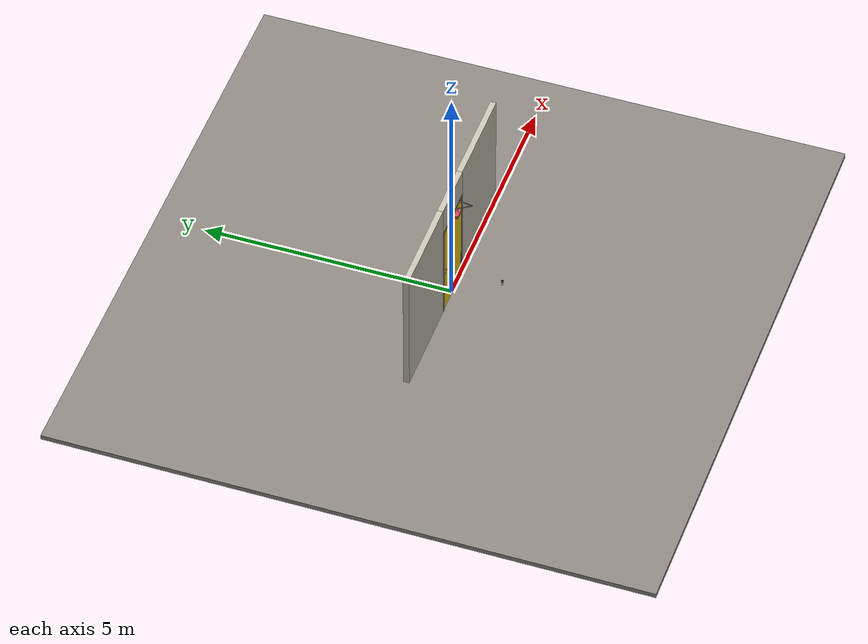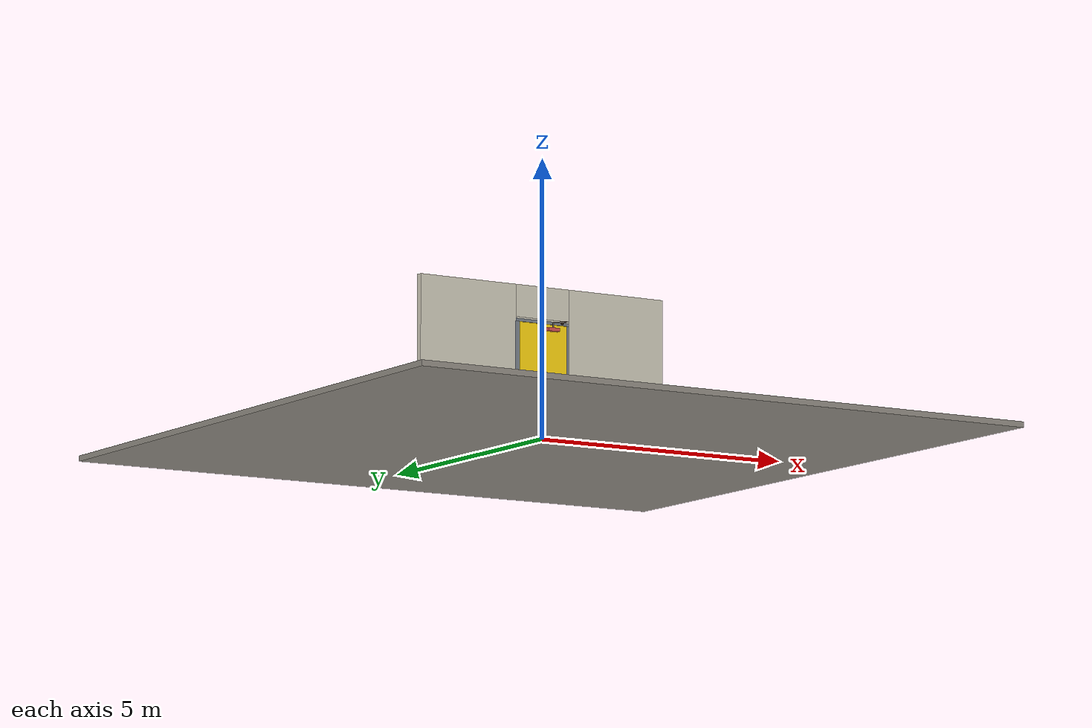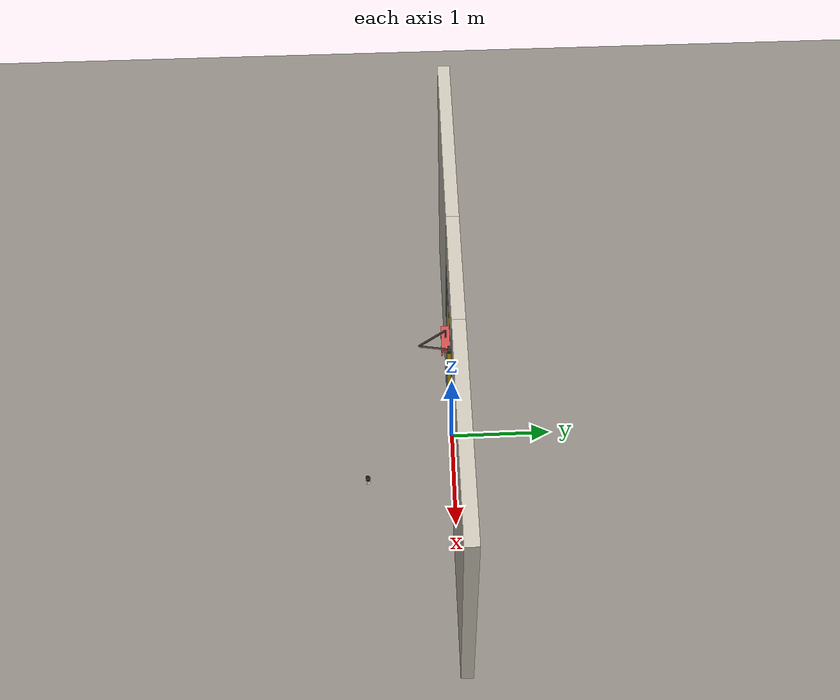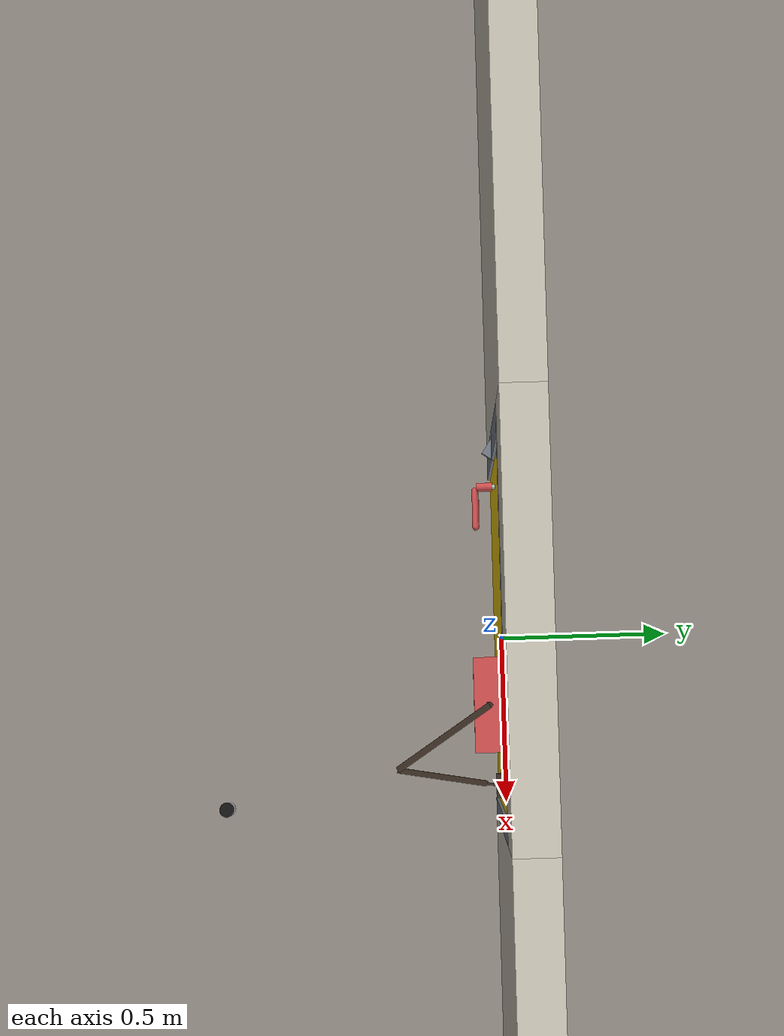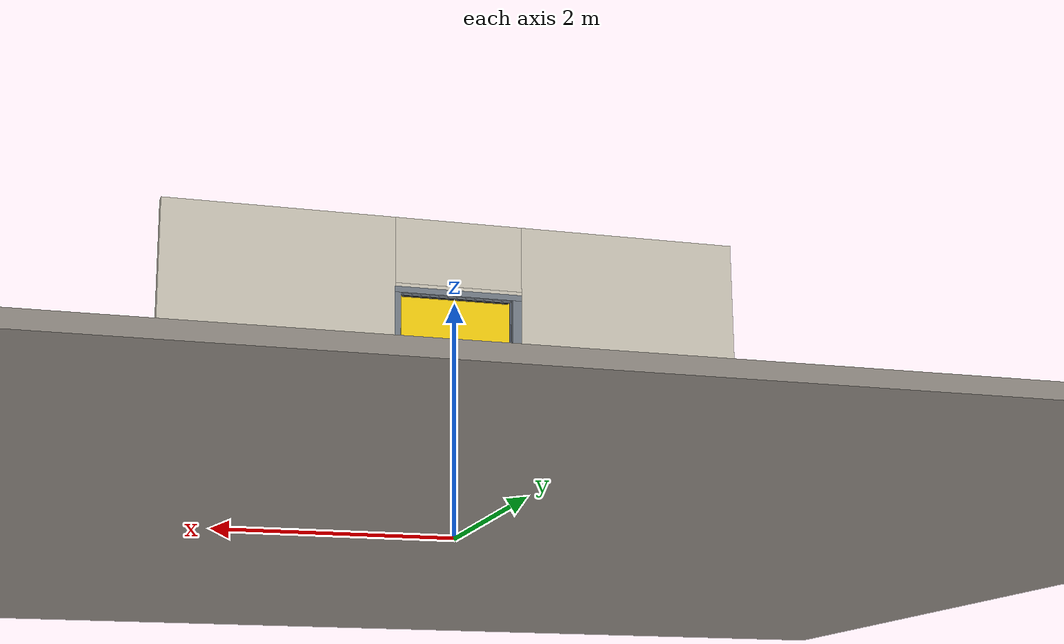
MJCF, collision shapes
<?xml version="1.0" ?>
<mujoco model="db0813_swing_single_full">
  <compiler angle="radian" meshdir="../../hardware" texturedir="../../textures" autolimits="true" inertiafromgeom="false"/>
  <option timestep="0.002" integrator="implicitfast" cone="elliptic" impratio="10" noslip_iterations="3">
    <flag multiccd="enable"/>
  </option>
  <size memory="16M"/>
  <default>
    <geom condim="4" solref="0.005 1" solimp="0.95 0.99 0.001"/>
    <joint solreflimit="0.005 1" solimplimit="0.95 0.99 0.001"/>
    <tendon solreflimit="0.005 1"/>
    <equality solref="0.002 1"/>
  </default>
  <visual>
    <headlight ambient="0.4 0.4 0.4" diffuse="0.7 0.7 0.7" specular="0.2 0.2 0.2"/>
    <quality shadowsize="4096"/>
    <map znear="0.01" zfar="60"/>
  </visual>
  <asset>
    <mesh name="closer_body_b226fdb10b" file="closer_body_b226fdb10b.obj"/>
    <mesh name="hinge_e22b26c0c1" file="hinge_e22b26c0c1.obj"/>
    <mesh name="hinge_jamb_e1d088f8dc" file="hinge_jamb_e1d088f8dc.obj"/>
    <mesh name="lever_6268dcb28c" file="lever_6268dcb28c.obj"/>
    <material name="mat_floor" rgba="0.55 0.53 0.5 1" specular="0.2" shininess="0.15" reflectance="0"/>
    <material name="mat_wall" rgba="0.78 0.76 0.7 1" specular="0.2" shininess="0.1" reflectance="0"/>
    <material name="mat_leaf" rgba="0.95 0.8 0.05 1" specular="0.23" shininess="0.56" reflectance="0.02"/>
    <material name="mat_hinge" rgba="0.65 0.66 0.68 1" specular="0.74" shininess="0.5" reflectance="0.36"/>
    <material name="mat_op_stainless" rgba="0.75 0.76 0.77 1" specular="0.8" shininess="0.65" reflectance="0.4"/>
    <material name="mat_trim" rgba="0.85 0.66 0.3 1" specular="0.8" shininess="0.75" reflectance="0.4"/>
    <material name="mat_bolt" rgba="0.85 0.66 0.3 1" specular="0.8" shininess="0.75" reflectance="0.4"/>
    <material name="mat_frame" rgba="0.45 0.48 0.52 1" specular="0.32" shininess="0.6" reflectance="0.08"/>
    <material name="mat_seal" rgba="0.1 0.1 0.1 1" specular="0.2" shininess="0.1" reflectance="0"/>
    <material name="mat_closer" rgba="0.22 0.17 0.13 1" specular="0.8" shininess="0.6" reflectance="0.4"/>
    <material name="mat_bumper_stop" rgba="0.08 0.08 0.08 1" specular="0.2" shininess="0.1" reflectance="0"/>
    <material name="mat_stop_base" rgba="0.9 0.9 0.92 1" specular="0.8" shininess="0.9" reflectance="0.4"/>
    <texture name="skybox" type="skybox" builtin="gradient" rgb1="0.6 0.7 0.85" rgb2="0.9 0.92 0.95" width="256" height="256"/>
  </asset>
  <worldbody>
    <light name="sun" pos="1.5 -2.5 4" dir="-0.3 0.5 -0.8" directional="true" diffuse="0.8 0.8 0.8" specular="0.3 0.3 0.3" castshadow="true"/>
    <light name="fill" pos="-1.5 2.5 3" dir="0.3 -0.5 -0.7" directional="true" diffuse="0.35 0.35 0.4" castshadow="false"/>
    <camera name="robot_view" pos="0 -2.513687 1.734312" xyaxes="1 0 0 0 0.26963 0.962964" fovy="52"/>
    <camera name="far_view" pos="0 2.570688 1.734312" xyaxes="-1 0 0 0 -0.26963 0.962964" fovy="52"/>
    <camera name="iso" pos="-1.932062 -2.106937 2.141063" xyaxes="0.741536 -0.670913 0 0.242917 0.268487 0.932151" fovy="46"/>
    <camera name="detail_handle" pos="-0.136 -0.877 1.296" xyaxes="0.97561 0.219512 0 -0.070934 0.315262 0.94635" fovy="38"/>
    <geom name="floor" type="box" size="6 6 0.05" pos="0 0 -0.05" material="mat_floor" group="0" contype="1" conaffinity="1" friction="0.8 0.005 0.0001" density="2400"/>
    <geom name="wall_left" type="box" size="0.967 0.0575 1.35" pos="-1.533 0.0285 1.35" material="mat_wall" group="0" contype="1" conaffinity="1" friction="0.6 0.005 0.0001" density="800"/>
    <geom name="wall_right" type="box" size="0.982 0.0575 1.35" pos="1.518 0.0285 1.35" material="mat_wall" group="0" contype="1" conaffinity="1" friction="0.6 0.005 0.0001" density="800"/>
    <geom name="wall_header" type="box" size="0.551 0.0575 0.2875" pos="-0.015 0.0285 2.4125" material="mat_wall" group="0" contype="1" conaffinity="1" friction="0.6 0.005 0.0001" density="800"/>
    <geom name="hinge_0_jamb" type="mesh" mesh="hinge_jamb_e1d088f8dc" pos="0.483 -0.029 0.259" quat="0 0 1 0" material="mat_hinge" group="1" contype="0" conaffinity="0" density="7850"/>
    <geom name="hinge_1_jamb" type="mesh" mesh="hinge_jamb_e1d088f8dc" pos="0.483 -0.029 1.025" quat="0 0 1 0" material="mat_hinge" group="1" contype="0" conaffinity="0" density="7850"/>
    <geom name="hinge_2_jamb" type="mesh" mesh="hinge_jamb_e1d088f8dc" pos="0.483 -0.029 1.861" quat="0 0 1 0" material="mat_hinge" group="1" contype="0" conaffinity="0" density="7850"/>
    <geom name="jamb_hinge" type="box" size="0.025 0.0575 1.0225" pos="0.511 0.0285 1.0225" material="mat_frame" group="0" contype="1" conaffinity="1" friction="0.6 0.005 0.0001" density="300"/>
    <geom name="strike_1016_wall_n" type="box" size="0.04 0.03825 0.0183" pos="-0.526 0.04775 1.016" material="mat_frame" group="0" contype="1" conaffinity="1" friction="0.6 0.005 0.0001" density="300"/>
    <geom name="strike_1016_wall_p" type="box" size="0.04 0.008 0.0183" pos="-0.526 -0.0175 1.016" material="mat_frame" group="0" contype="1" conaffinity="1" friction="0.6 0.005 0.0001" density="300"/>
    <geom name="strike_1016_ramp" type="box" size="0.04 0.018028 0.0183" pos="-0.529282 -0.018312 1.016" quat="0.957092 0 0 -0.289784" material="mat_frame" group="0" contype="1" conaffinity="1" friction="0.12 0.005 0.0001" density="300"/>
    <geom name="strike_1016_back" type="box" size="0.0285 0.0095 0.0183" pos="-0.5375 0 1.016" material="mat_frame" group="0" contype="1" conaffinity="1" friction="0.6 0.005 0.0001" density="300"/>
    <geom name="jamb_strike_0" type="box" size="0.04 0.0575 0.49885" pos="-0.526 0.0285 0.49885" material="mat_frame" group="0" contype="1" conaffinity="1" friction="0.6 0.005 0.0001" density="300"/>
    <geom name="jamb_strike_1" type="box" size="0.04 0.0575 0.50535" pos="-0.526 0.0285 1.53965" material="mat_frame" group="0" contype="1" conaffinity="1" friction="0.6 0.005 0.0001" density="300"/>
    <geom name="jamb_head" type="box" size="0.551 0.0575 0.025" pos="-0.015 0.0285 2.07" material="mat_frame" group="0" contype="1" conaffinity="1" friction="0.6 0.005 0.0001" density="300"/>
    <geom name="head_stud" type="box" size="0.551 0.0575 0.015" pos="-0.015 0.0285 2.11" material="mat_wall" group="0" contype="1" conaffinity="1" friction="0.6 0.005 0.0001" density="500"/>
    <geom name="stop_hinge" type="box" size="0.0055 0.016 1.0225" pos="0.4805 0.0385 1.0225" material="mat_frame" group="0" contype="1" conaffinity="1" friction="0.6 0.005 0.0001" density="300"/>
    <geom name="stop_strike" type="box" size="0.0055 0.016 1.0225" pos="-0.4805 0.0385 1.0225" material="mat_frame" group="0" contype="1" conaffinity="1" friction="0.6 0.005 0.0001" density="300"/>
    <geom name="stop_head" type="box" size="0.486 0.016 0.0055" pos="0 0.0385 2.0395" material="mat_frame" group="0" contype="1" conaffinity="1" friction="0.6 0.005 0.0001" density="300"/>
    <geom name="seal_hinge" type="box" size="0.004 0.0025 1.0225" pos="0.483 0.0245 1.0225" material="mat_seal" group="1" contype="0" conaffinity="0" density="1100"/>
    <geom name="seal_strike" type="box" size="0.004 0.0025 1.0225" pos="-0.483 0.0245 1.0225" material="mat_seal" group="1" contype="0" conaffinity="0" density="1100"/>
    <geom name="seal_head" type="box" size="0.466 0.0025 0.008" pos="0 0.0245 2.033" material="mat_seal" group="1" contype="0" conaffinity="0" density="1100"/>
    <geom name="closer_bracket" type="box" size="0.03 0.012 0.014" pos="0.386 -0.041 2.075" material="mat_closer" group="1" contype="0" conaffinity="0" density="2700"/>
    <geom name="door_stop_base" type="cylinder" size="0.022 0.003" pos="0.499 -0.84925 0.003" material="mat_stop_base" group="0" contype="1" conaffinity="1" friction="0.6 0.005 0.0001" density="7850"/>
    <geom name="door_stop_post" type="cylinder" size="0.012 0.0245" pos="0.499 -0.84925 0.0305" material="mat_stop_base" group="0" contype="1" conaffinity="1" friction="0.6 0.005 0.0001" density="7850"/>
    <geom name="door_stop_bumper" type="cylinder" size="0.022 0.02" pos="0.499 -0.84925 0.075" material="mat_bumper_stop" group="0" contype="1" conaffinity="1" friction="0.6 0.005 0.0001" density="1100"/>
    <site name="approach_point" pos="0 -1.5 0" quat="1 0 0 0" size="0.05" rgba="0.2 0.9 0.2 0.5" group="4"/>
    <site name="goal_point" pos="0 1.5 0" quat="1 0 0 0" size="0.05" rgba="0.2 0.9 0.2 0.5" group="4"/>
    <site name="door_plane_center" pos="0 0 1.0225" quat="1 0 0 0" size="0.02" rgba="0.2 0.9 0.2 0.5" group="4"/>
    <body name="leaf" pos="0.486 0 0">
      <inertial pos="-0.452876 -0.009112 1.158139" mass="51.355005" quat="0.515841 -0.514676 -0.476165 -0.492223" diaginertia="3.716472657 20.710273745 24.37060906"/>
      <joint name="leaf_hinge" type="hinge" axis="0 0 1" pos="-0.003 -0.029 0" limited="true" range="0 1.570796" solreflimit="0.02 1" damping="10.318237" frictionloss="2.113355" stiffness="14.514931" springref="-2.059948" armature="0.02"/>
      <geom name="leaf_slab" type="box" size="0.4825 0.022 1.016" pos="-0.4855 0 1.025" material="mat_leaf" group="0" contype="1" conaffinity="1" friction="0.4 0.005 0.0001" density="1"/>
      <geom name="hinge_0" type="mesh" mesh="hinge_e22b26c0c1" pos="-0.003 -0.029 0.259" quat="0 0 1 0" material="mat_hinge" group="1" contype="0" conaffinity="0" density="7850"/>
      <geom name="hinge_1" type="mesh" mesh="hinge_e22b26c0c1" pos="-0.003 -0.029 1.025" quat="0 0 1 0" material="mat_hinge" group="1" contype="0" conaffinity="0" density="7850"/>
      <geom name="hinge_2" type="mesh" mesh="hinge_e22b26c0c1" pos="-0.003 -0.029 1.861" quat="0 0 1 0" material="mat_hinge" group="1" contype="0" conaffinity="0" density="7850"/>
      <geom name="leaf_latch_bolt_faceplate" type="box" size="0.0006 0.014 0.0283" pos="-0.9674 0 1.016" material="mat_bolt" group="1" contype="0" conaffinity="0" density="8500"/>
      <geom name="closer_body" type="mesh" mesh="closer_body_b226fdb10b" pos="-0.3 -0.022 1.952" quat="0 0 -0.707107 0.707107" material="mat_closer" group="1" contype="0" conaffinity="0" density="2000"/>
      <geom name="closer_body_col" type="box" size="0.12 0.04 0.03" pos="-0.3 -0.062 1.952" material="mat_closer" group="3" contype="1" conaffinity="1" rgba="0.8 0.3 0.3 0.25" friction="0.6 0.005 0.0001" density="2000"/>
      <geom name="closer_pinion_shaft" type="cylinder" size="0.008 0.0615" pos="-0.3 -0.064 2.0135" material="mat_closer" group="1" contype="0" conaffinity="0" density="2700"/>
      <site name="leaf_edge_mid" pos="-0.968 0 1.016" quat="1 0 0 0" size="0.02" rgba="0.2 0.9 0.2 0.5" group="4"/>
      <body name="leaf_handle" pos="-0.898 0 1.016">
        <inertial pos="0.035149 0 0" mass="1.038236" quat="0.707107 0 0 -0.707107" diaginertia="0.002348364 0.00382535 0.005606687"/>
        <joint name="leaf_handle_hinge" type="hinge" axis="0 1 0" limited="true" range="0 0.96" damping="0.255791" frictionloss="0.05" stiffness="1.2" springref="-0.583333" armature="0.01"/>
        <geom name="leaf_handle_spindle" type="cylinder" size="0.006 0.03" pos="0 0 0" quat="0.707107 -0.707107 0 0" material="mat_op_stainless" group="1" contype="0" conaffinity="0" density="7850"/>
        <geom name="leaf_handle_lever_n" type="mesh" mesh="lever_6268dcb28c" pos="0 -0.022 0" quat="0 0 -0.707107 0.707107" material="mat_op_stainless" group="1" contype="0" conaffinity="0" density="3000"/>
        <geom name="leaf_handle_lever_col_n" type="capsule" size="0.0095 0.0505" pos="0.06 -0.077 0" quat="0.707107 0 0.707107 0" material="mat_op_stainless" group="3" contype="1" conaffinity="1" rgba="0.8 0.3 0.3 0.25" friction="0.7 0.01 0.0001" density="3000"/>
        <geom name="leaf_handle_hub_col_n" type="cylinder" size="0.012 0.022" pos="0 -0.052 0" quat="0.707107 -0.707107 0 0" material="mat_op_stainless" group="3" contype="1" conaffinity="1" rgba="0.8 0.3 0.3 0.25" friction="0.6 0.005 0.0001" density="3000"/>
        <geom name="leaf_handle_lever_p" type="mesh" mesh="lever_6268dcb28c" pos="0 0.022 0" quat="0 0 0.707107 0.707107" material="mat_op_stainless" group="1" contype="0" conaffinity="0" density="3000"/>
        <geom name="leaf_handle_lever_col_p" type="capsule" size="0.0095 0.0505" pos="0.06 0.077 0" quat="0.707107 0 0.707107 0" material="mat_op_stainless" group="3" contype="1" conaffinity="1" rgba="0.8 0.3 0.3 0.25" friction="0.7 0.01 0.0001" density="3000"/>
        <geom name="leaf_handle_hub_col_p" type="cylinder" size="0.012 0.022" pos="0 0.052 0" quat="0.707107 -0.707107 0 0" material="mat_op_stainless" group="3" contype="1" conaffinity="1" rgba="0.8 0.3 0.3 0.25" friction="0.6 0.005 0.0001" density="3000"/>
        <site name="leaf_handle_grip_n" pos="0.096 -0.077 0" quat="1 0 0 0" size="0.012" rgba="0.2 0.9 0.2 0.5" group="4"/>
        <site name="leaf_handle_grip_p" pos="0.096 0.077 0" quat="1 0 0 0" size="0.012" rgba="0.2 0.9 0.2 0.5" group="4"/>
      </body>
      <body name="leaf_latch_bolt" pos="-0.968 0 1.016">
        <inertial pos="0.0055 0 0" mass="0.074627" quat="0.92388 0.382683 0 0" diaginertia="0.000002271 0.000013255 0.000013255"/>
        <joint name="leaf_latch_bolt_slide" type="slide" axis="1 0 0" limited="true" range="0 0.019" damping="2" frictionloss="0.3" stiffness="600" springref="-0.01" armature="0.1"/>
        <geom name="leaf_latch_bolt_capsule" type="capsule" size="0.008 0.0165" pos="0.0055 0 0" quat="0.707107 0 -0.707107 0" material="mat_bolt" group="0" contype="1" conaffinity="1" friction="0.2 0.005 0.0001" density="8500"/>
      </body>
      <body name="closer_arm_main" pos="-0.3 -0.064 2.075" quat="0.881485 0 0 -0.472212">
        <inertial pos="0.14 0 0" mass="0.12096" quat="1 0 0 0" diaginertia="0.000003588 0.00079128 0.000792852"/>
        <joint name="closer_pinion" type="hinge" axis="0 0 1" limited="false" damping="0.01" armature="0.002"/>
        <geom name="closer_arm_main_geom" type="box" size="0.14 0.008 0.005" pos="0.14 0 0" material="mat_closer" group="1" contype="0" conaffinity="0" density="2700"/>
        <body name="closer_arm_fore" pos="0.28 0 0" quat="0.371222 0 0 0.928544">
          <inertial pos="0.128088 0 0" mass="0.076531" quat="1 0 0 0" diaginertia="0.000001771 0.000437665 0.000438201"/>
          <joint name="closer_elbow" type="hinge" axis="0 0 1" limited="false" damping="0.01" armature="0.002"/>
          <geom name="closer_arm_fore_geom" type="box" size="0.1125 0.007 0.004" pos="0.1125 0 0" material="mat_closer" group="1" contype="0" conaffinity="0" density="2700"/>
          <geom name="closer_fore_neck" type="box" size="0.0175 0.003 0.003" pos="0.2425 0 0" material="mat_closer" group="1" contype="0" conaffinity="0" density="2700"/>
          <geom name="closer_fore_pivot" type="cylinder" size="0.005 0.012" pos="0.26 0 0" material="mat_closer" group="1" contype="0" conaffinity="0" density="2700"/>
        </body>
      </body>
    </body>
  </worldbody>
  <tendon>
    <fixed name="leaf_latch_bolt_coupling" limited="true" range="0 10">
      <joint joint="leaf_latch_bolt_slide" coef="1"/>
      <joint joint="leaf_handle_hinge" coef="-0.020879"/>
    </fixed>
  </tendon>
  <equality>
    <connect name="closer_arm_connect" body1="closer_arm_fore" body2="world" anchor="0.26 0 0" active="true"/>
  </equality>
  <contact>
    <exclude body1="closer_arm_main" body2="leaf"/>
    <exclude body1="closer_arm_fore" body2="leaf"/>
    <exclude body1="closer_arm_main" body2="closer_arm_fore"/>
  </contact>
  <sensor>
    <jointpos name="leaf_hinge_pos" joint="leaf_hinge"/>
    <jointvel name="leaf_hinge_vel" joint="leaf_hinge"/>
    <jointpos name="leaf_handle_hinge_pos" joint="leaf_handle_hinge"/>
    <jointvel name="leaf_handle_hinge_vel" joint="leaf_handle_hinge"/>
    <jointpos name="leaf_latch_bolt_slide_pos" joint="leaf_latch_bolt_slide"/>
    <jointvel name="leaf_latch_bolt_slide_vel" joint="leaf_latch_bolt_slide"/>
  </sensor>
</mujoco>
